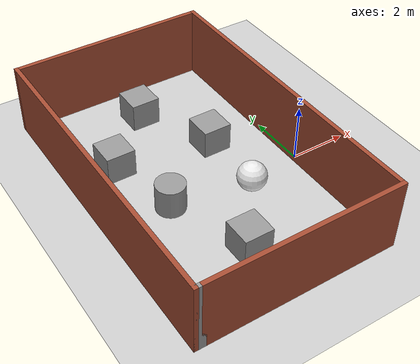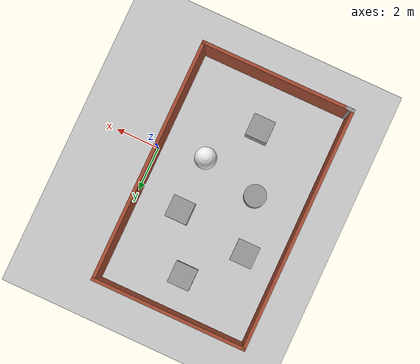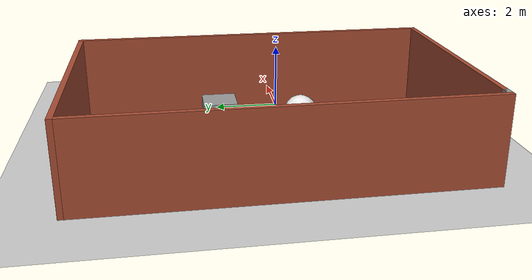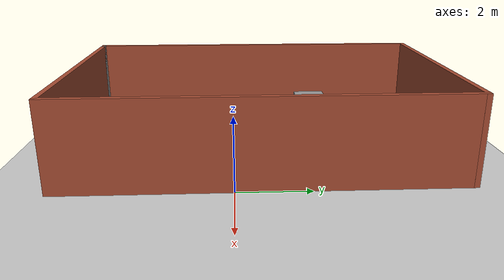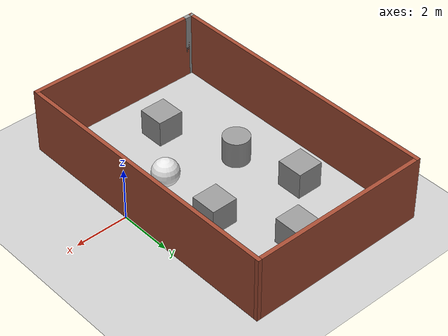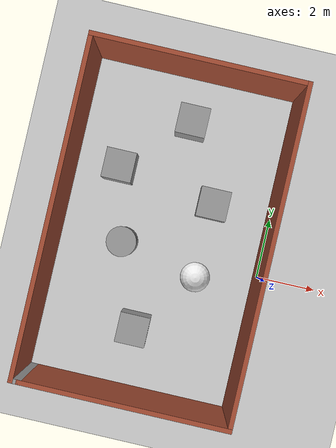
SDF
<sdf version="1.7">
 <world name="default">
  <light name="sun" type="directional">
   <pose>0 0 10 0 -0 0</pose>
   <diffuse>0.8 0.8 0.8 1</diffuse>
   <specular>0.2 0.2 0.2 1</specular>
   <attenuation>
    <range>1000</range>
    <constant>0.9</constant>
    <linear>0.01</linear>
    <quadratic>0.001</quadratic>
   </attenuation>
   <direction>-0.5 0.1 -0.9</direction>
   <spot><inner_angle>0</inner_angle><outer_angle>0</outer_angle><falloff>0</falloff></spot>
  </light>
  <model name="ground_plane">
   <static>1</static>
   <link name="link">
    <collision name="collision">
     <geometry><plane><normal>0 0 1</normal><size>100 100</size></plane></geometry>
     <surface>
      <contact><collide_bitmask>65535</collide_bitmask></contact>
      <friction><ode><mu>100</mu><mu2>50</mu2></ode></friction>
     </surface>
    </collision>
    <visual name="visual">
     <cast_shadows>0</cast_shadows>
     <geometry><plane><normal>0 0 1</normal><size>100 100</size></plane></geometry>
     <material>
      <script><uri>file://media/materials/scripts/gazebo.material</uri><name>Gazebo/Grey</name></script>
     </material>
    </visual>
   </link>
  </model>
  <gravity>0 0 -9.8</gravity>
  <magnetic_field>6e-06 2.3e-05 -4.2e-05</magnetic_field>
  <atmosphere type="adiabatic"/>
  <physics type="ode">
   <max_step_size>0.001</max_step_size>
   <real_time_factor>1</real_time_factor>
   <real_time_update_rate>1000</real_time_update_rate>
  </physics>
  <scene><ambient>0.4 0.4 0.4 1</ambient><background>0.7 0.7 0.7 1</background><shadows>1</shadows></scene>
  <spherical_coordinates>
   <surface_model>EARTH_WGS84</surface_model>
   <latitude_deg>0</latitude_deg>
   <longitude_deg>0</longitude_deg>
   <elevation>0</elevation>
   <heading_deg>0</heading_deg>
  </spherical_coordinates>
  <model name="small_room.world">
   <pose>-3.49717 0.773329 0 0 -0 0</pose>
   <link name="Wall_1">
    <collision name="Wall_1_Collision">
     <geometry><box><size>6.75 0.15 2.5</size></box></geometry>
     <pose>0 0 1.25 0 -0 0</pose>
    </collision>
    <visual name="Wall_1_Visual">
     <pose>0 0 1.25 0 -0 0</pose>
     <geometry><box><size>6.75 0.15 2.5</size></box></geometry>
     <material>
      <script><uri>file://media/materials/scripts/gazebo.material</uri><name>Gazebo/Bricks</name></script>
      <ambient>1 1 1 1</ambient>
     </material>
     <meta><layer>0</layer></meta>
    </visual>
    <pose>0.125 -5.425 0 0 -0 0</pose>
   </link>
   <link name="Wall_2">
    <collision name="Wall_2_Collision">
     <geometry><box><size>11 0.15 2.5</size></box></geometry>
     <pose>0 0 1.25 0 -0 0</pose>
    </collision>
    <visual name="Wall_2_Visual">
     <pose>0 0 1.25 0 -0 0</pose>
     <geometry><box><size>11 0.15 2.5</size></box></geometry>
     <material>
      <script><uri>file://media/materials/scripts/gazebo.material</uri><name>Gazebo/Bricks</name></script>
      <ambient>1 1 1 1</ambient>
     </material>
     <meta><layer>0</layer></meta>
    </visual>
    <pose>3.425 -0 0 0 -0 1.5708</pose>
   </link>
   <link name="Wall_3">
    <collision name="Wall_3_Collision">
     <geometry><box><size>7 0.15 2.5</size></box></geometry>
     <pose>0 0 1.25 0 -0 0</pose>
    </collision>
    <visual name="Wall_3_Visual">
     <pose>0 0 1.25 0 -0 0</pose>
     <geometry><box><size>7 0.15 2.5</size></box></geometry>
     <material>
      <script><uri>file://media/materials/scripts/gazebo.material</uri><name>Gazebo/Bricks</name></script>
      <ambient>1 1 1 1</ambient>
     </material>
     <meta><layer>0</layer></meta>
    </visual>
    <pose>0 5.425 0 0 -0 3.14159</pose>
   </link>
   <link name="Wall_4">
    <collision name="Wall_4_Collision">
     <geometry><box><size>11 0.15 2.5</size></box></geometry>
     <pose>0 0 1.25 0 -0 0</pose>
    </collision>
    <visual name="Wall_4_Visual">
     <pose>0 0 1.25 0 -0 0</pose>
     <geometry><box><size>11 0.15 2.5</size></box></geometry>
     <material>
      <script><uri>file://media/materials/scripts/gazebo.material</uri><name>Gazebo/Bricks</name></script>
      <ambient>1 1 1 1</ambient>
     </material>
     <meta><layer>0</layer></meta>
    </visual>
    <pose>-3.425 -0 0 0 -0 -1.5708</pose>
   </link>
   <link name="Wall_5">
    <collision name="Wall_5_Collision">
     <geometry><box><size>0.4 0.15 2.5</size></box></geometry>
     <pose>0 0 1.25 0 -0 0</pose>
    </collision>
    <visual name="Wall_5_Visual">
     <pose>0 0 1.25 0 -0 0</pose>
     <geometry><box><size>0.4 0.15 2.5</size></box></geometry>
     <material>
      <script><uri>file://media/materials/scripts/gazebo.material</uri><name>Gazebo/Grey</name></script>
      <ambient>1 1 1 1</ambient>
     </material>
     <meta><layer>0</layer></meta>
    </visual>
    <pose>-3.3 -5.425 0 0 -0 0</pose>
   </link>
   <static>1</static>
  </model>
  <model name="unit_sphere">
   <pose>-2.07874 -0.436809 0.5 0 -0 0</pose>
   <link name="link">
    <inertial>
     <mass>1</mass>
     <inertia><ixx>0.1</ixx><ixy>0</ixy><ixz>0</ixz><iyy>0.1</iyy><iyz>0</iyz><izz>0.1</izz></inertia>
    </inertial>
    <collision name="collision"><geometry><sphere><radius>0.0005</radius></sphere></geometry></collision>
    <visual name="visual">
     <geometry><sphere><radius>0.50000</radius></sphere></geometry>
     <material>
      <script><name>Gazebo/White</name><uri>file://media/materials/scripts/gazebo.material</uri></script>
     </material>
    </visual>
   </link>
  </model>
  <model name="unit_box">
   <pose>-5.35423 2.60922 0.499995 -1e-05 -0 -0</pose>
   <link name="link">
    <inertial>
     <mass>1</mass>
     <inertia>
      <ixx>0.166667</ixx>
      <ixy>0</ixy>
      <ixz>0</ixz>
      <iyy>0.166667</iyy>
      <iyz>0</iyz>
      <izz>0.166667</izz>
     </inertia>
    </inertial>
    <collision name="collision"><geometry><box><size>1 1 1</size></box></geometry></collision>
    <visual name="visual">
     <geometry><box><size>1 1 1</size></box></geometry>
     <material>
      <script><name>Gazebo/Grey</name><uri>file://media/materials/scripts/gazebo.material</uri></script>
     </material>
    </visual>
   </link>
  </model>
  <model name="unit_cylinder">
   <pose>-4.71295 0.180007 0.499992 -3e-06 -4e-06 -0</pose>
   <link name="link">
    <inertial>
     <mass>1</mass>
     <inertia><ixx>0.145833</ixx><ixy>0</ixy><ixz>0</ixz><iyy>0.145833</iyy><iyz>0</iyz><izz>0.125</izz></inertia>
    </inertial>
    <collision name="collision">
     <geometry><cylinder><radius>0.5</radius><length>1</length></cylinder></geometry>
    </collision>
    <visual name="visual">
     <geometry><cylinder><radius>0.5</radius><length>1</length></cylinder></geometry>
     <material>
      <script><name>Gazebo/Grey</name><uri>file://media/materials/scripts/gazebo.material</uri></script>
     </material>
    </visual>
   </link>
  </model>
  <model name="unit_sphere">
   <pose>-2.07874 -0.436809 0.5 0 -0 0</pose>
   <link name="link">
    <inertial>
     <mass>1</mass>
     <inertia><ixx>0.1</ixx><ixy>0</ixy><ixz>0</ixz><iyy>0.1</iyy><iyz>0</iyz><izz>0.1</izz></inertia>
    </inertial>
    <collision name="collision"><geometry><sphere><radius>0.5</radius></sphere></geometry></collision>
    <visual name="visual">
     <geometry><sphere><radius>0.5</radius></sphere></geometry>
     <material>
      <script><name>Gazebo/Grey</name><uri>file://media/materials/scripts/gazebo.material</uri></script>
     </material>
    </visual>
   </link>
  </model>
  <model name="unit_box_0">
   <pose>-3.32449 4.57865 0.499995 0 1e-05 0</pose>
   <link name="link">
    <inertial>
     <mass>1</mass>
     <inertia>
      <ixx>0.166667</ixx>
      <ixy>0</ixy>
      <ixz>0</ixz>
      <iyy>0.166667</iyy>
      <iyz>0</iyz>
      <izz>0.166667</izz>
     </inertia>
    </inertial>
    <collision name="collision"><geometry><box><size>1 1 1</size></box></geometry></collision>
    <visual name="visual">
     <geometry><box><size>1 1 1</size></box></geometry>
     <material>
      <script><name>Gazebo/Grey</name><uri>file://media/materials/scripts/gazebo.material</uri></script>
     </material>
    </visual>
   </link>
  </model>
  <model name="unit_box_1">
   <pose>-2.04293 2.06256 0.499995 -1e-05 -0 0</pose>
   <link name="link">
    <inertial>
     <mass>1</mass>
     <inertia>
      <ixx>0.166667</ixx>
      <ixy>0</ixy>
      <ixz>0</ixz>
      <iyy>0.166667</iyy>
      <iyz>0</iyz>
      <izz>0.166667</izz>
     </inertia>
    </inertial>
    <collision name="collision"><geometry><box><size>1 1 1</size></box></geometry></collision>
    <visual name="visual">
     <geometry><box><size>1 1 1</size></box></geometry>
     <material>
      <script><name>Gazebo/Grey</name><uri>file://media/materials/scripts/gazebo.material</uri></script>
     </material>
    </visual>
   </link>
  </model>
  <model name="unit_box_2">
   <pose>-3.70233 -2.55418 0.5 0 -0 0</pose>
   <link name="link">
    <inertial>
     <mass>1</mass>
     <inertia>
      <ixx>0.166667</ixx>
      <ixy>0</ixy>
      <ixz>0</ixz>
      <iyy>0.166667</iyy>
      <iyz>0</iyz>
      <izz>0.166667</izz>
     </inertia>
    </inertial>
    <collision name="collision"><geometry><box><size>1 1 1</size></box></geometry></collision>
    <visual name="visual">
     <geometry><box><size>1 1 1</size></box></geometry>
     <material>
      <script><name>Gazebo/Grey</name><uri>file://media/materials/scripts/gazebo.material</uri></script>
     </material>
    </visual>
   </link>
  </model>
 </world>
</sdf>
